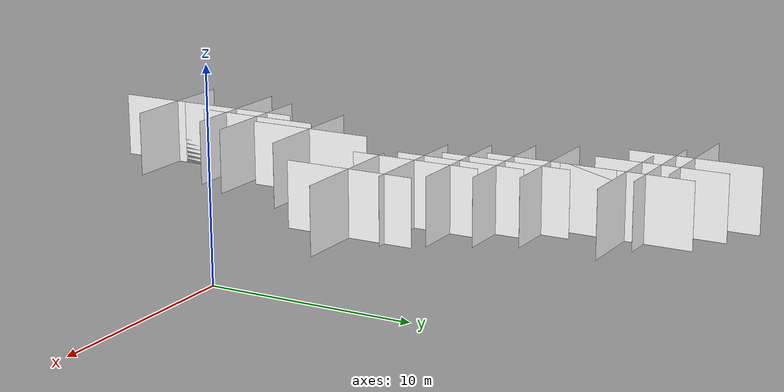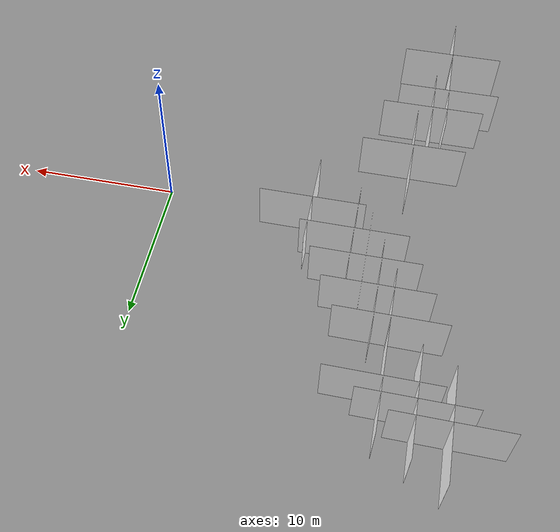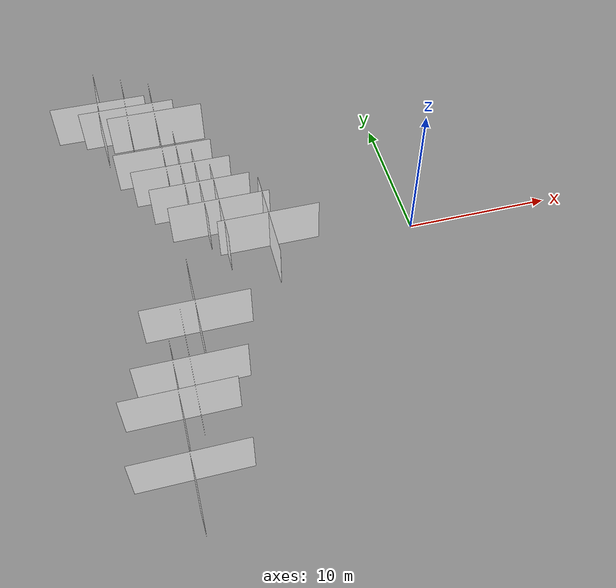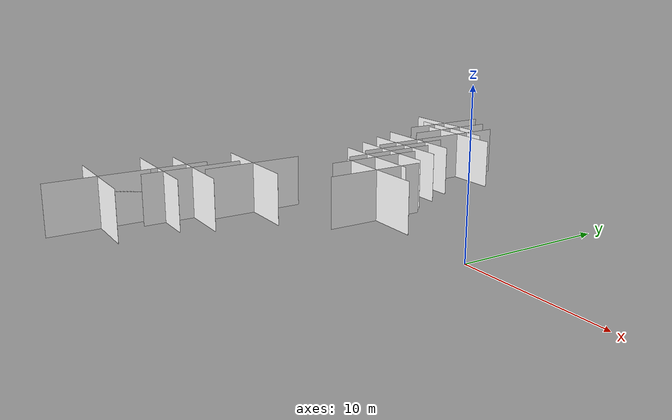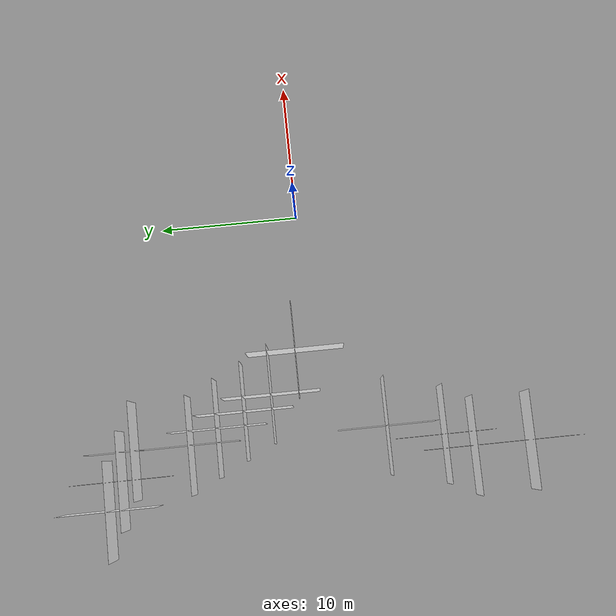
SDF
<sdf version="1.8">
 <world name="custom_world_1">
  <light name="sun" type="directional">
   <cast_shadows>0</cast_shadows>
   <pose>0 0 100 0 -0 0</pose>
   <diffuse>0.8 0.8 0.8 1</diffuse>
   <specular>0.8 0.8 0.8 1</specular>
   <direction>-0.5 0.1 -0.9</direction>
   <intensity>5</intensity>
  </light>
  <gravity>0 0 -9.81</gravity>
  <magnetic_field>6e-06 2.3e-05 -4.2e-05</magnetic_field>
  <atmosphere type="adiabatic"/>
  <physics name="default_physics" type="ignored">
   <max_step_size>0.01</max_step_size>
   <real_time_factor>1</real_time_factor>
   <real_time_update_rate>100</real_time_update_rate>
  </physics>
  <scene>
   <ambient>1.0 1.0 1.0 1</ambient>
   <background>0.6 0.8 1.0 1</background>
   <shadows>0</shadows>
   <grid>0</grid>
  </scene>
  <spherical_coordinates>
   <latitude_deg>0.0</latitude_deg>
   <longitude_deg>0.0</longitude_deg>
   <elevation>10.0</elevation>
   <heading_deg>0</heading_deg>
   <surface_model>EARTH_WGS84</surface_model>
  </spherical_coordinates>
  <include><uri>model://fire</uri><name>fire1a</name><pose>-20 15 1.4 1.570796 0 -1.570796</pose></include>
  <include><uri>model://fire</uri><name>fire1b</name><pose>-20 15 1.4 1.570796 0 0</pose></include>
  <include><uri>model://fire</uri><name>fire2a</name><pose>-16 13 1.4 1.570796 0 -1.570796</pose></include>
  <include><uri>model://fire</uri><name>fire2b</name><pose>-16 13 1.4 1.570796 0 0</pose></include>
  <include><uri>model://fire</uri><name>fire3a</name><pose>-16 9 1.4 1.570796 0 -1.570796</pose></include>
  <include><uri>model://fire</uri><name>fire3b</name><pose>-16 9 1.4 1.570796 0 0</pose></include>
  <include><uri>model://fire</uri><name>fire4a</name><pose>-14 5 1.4 1.570796 0 -1.570796</pose></include>
  <include><uri>model://fire</uri><name>fire4b</name><pose>-14 5 1.4 1.570796 0 0</pose></include>
  <include><uri>model://fire</uri><name>fire5a</name><pose>-10 1 1.4 1.570796 0 -1.570796</pose></include>
  <include><uri>model://fire</uri><name>fire5b</name><pose>-10 1 1.4 1.570796 0 0</pose></include>
  <include><uri>model://fire</uri><name>fire6a</name><pose>-16 -5 1.4 1.570796 0 -1.570796</pose></include>
  <include><uri>model://fire</uri><name>fire6b</name><pose>-16 -5 1.4 1.570796 0 0</pose></include>
  <include><uri>model://fire</uri><name>fire7a</name><pose>-17 -9 1.4 1.570796 0 -1.570796</pose></include>
  <include><uri>model://fire</uri><name>fire7b</name><pose>-17 -9 1.4 1.570796 0 0</pose></include>
  <include><uri>model://fire</uri><name>fire8a</name><pose>-18 -11 1.4 1.570796 0 -1.570796</pose></include>
  <include><uri>model://fire</uri><name>fire8b</name><pose>-18 -11 1.4 1.570796 0 0</pose></include>
  <include><uri>model://fire</uri><name>fire9a</name><pose>-18 -15 1.4 1.570796 0 -1.570796</pose></include>
  <include><uri>model://fire</uri><name>fire9b</name><pose>-18 -15 1.4 1.570796 0 0</pose></include>
  <include><uri>model://fire</uri><name>fire10a</name><pose>-13 3 1.4 1.570796 0 -1.570796</pose></include>
  <include><uri>model://fire</uri><name>fire10b</name><pose>-13 3 1.4 1.570796 0 0</pose></include>
  <include><uri>model://fire</uri><name>fire11a</name><pose>-18 14 1.4 1.570796 0 -1.570796</pose></include>
  <include><uri>model://fire</uri><name>fire11b</name><pose>-18 14 1.4 1.570796 0 0</pose></include>
  <include><uri>model://fire</uri><name>fire12a</name><pose>-15 7 1.4 1.570796 0 -1.570796</pose></include>
  <include><uri>model://fire</uri><name>fire12b</name><pose>-15 7 1.4 1.570796 0 0</pose></include>
 </world>
</sdf>

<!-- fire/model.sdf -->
<sdf version="1.7">
<model name="fire">
    <static>true</static>
    <link name="link">
        <collision name="collision">
            <geometry>
            <box>
                <size>7 3.5 0.01</size>
            </box>
            </geometry>
        </collision>
        <visual name="visual">
            <cast_shadows>false</cast_shadows>
            <geometry>
            <plane>
                <normal>0 0 1</normal>
                <size>7 3.5</size>
            </plane>
            </geometry>
            <material>
                <diffuse>1.0 1.0 1.0 1</diffuse>
                <pbr>
                    <metal>
                    <albedo_map>
                        model://fire/materials/fire_transparent.png
                    </albedo_map>
                    </metal>
                </pbr>
                <double_sided>true</double_sided>
            </material>
        </visual>
    </link>
</model>
</sdf>
